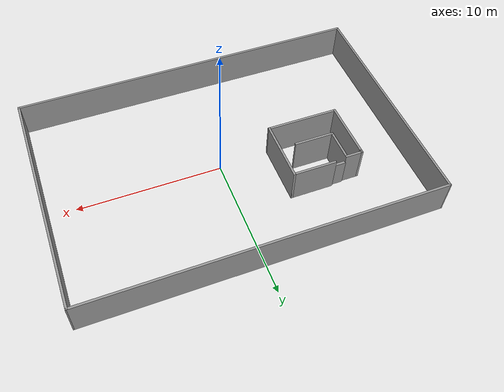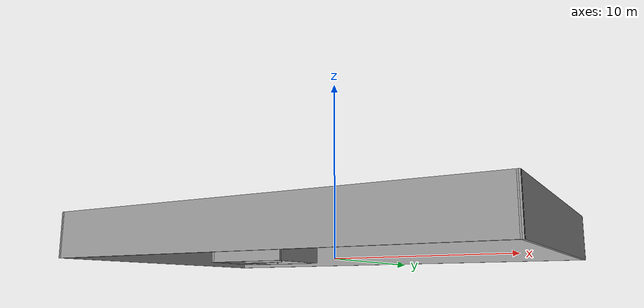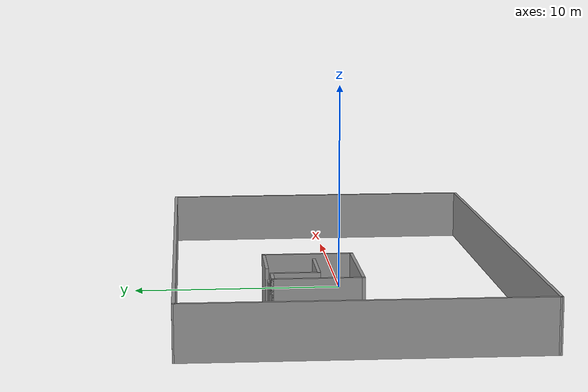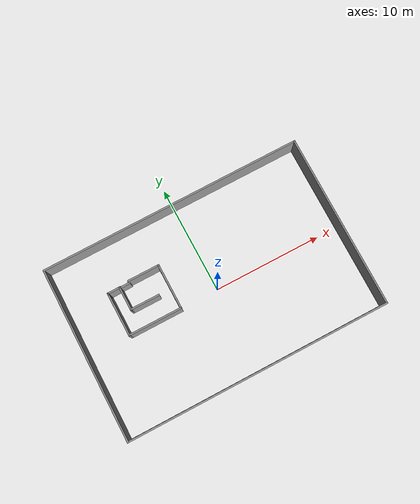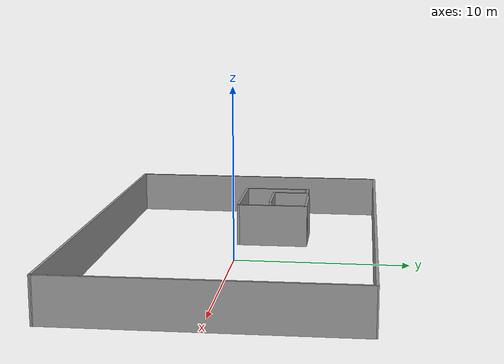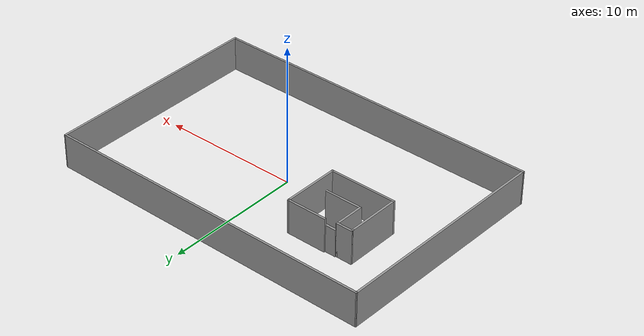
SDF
<?xml version='1.0'?>
<sdf version='1.7'>
  <model name='world1'>
    <pose>-0.307076 0.056557 0 0 -0 0</pose>
    <link name='Door_0'>
      <collision name='Door_0_Collision'>
        <geometry>
          <box>
            <size>0.9 0.17 2</size>
          </box>
        </geometry>
        <pose>0 0 1 0 -0 0</pose>
      </collision>
      <visual name='Door_0_Visual'>
        <pose>0 0 1 0 -0 0</pose>
        <geometry>
          <box>
            <size>0.9 0.17 2</size>
          </box>
        </geometry>
        <material>
          <script>
            <uri>file://media/materials/scripts/gazebo.material</uri>
            <name>Gazebo/Grey</name>
          </script>
        </material>
      </visual>
      <pose>-6.49109 3.74781 0 0 -0 0</pose>
    </link>
    <link name='Wall_0'>
      <collision name='Wall_0_Collision'>
        <geometry>
          <box>
            <size>16.1041 0.15 2.5</size>
          </box>
        </geometry>
        <pose>0 0 1.25 0 -0 0</pose>
      </collision>
      <visual name='Wall_0_Visual'>
        <pose>0 0 1.25 0 -0 0</pose>
        <geometry>
          <box>
            <size>16.1041 0.15 2.5</size>
          </box>
        </geometry>
        <material>
          <script>
            <uri>file://media/materials/scripts/gazebo.material</uri>
            <name>Gazebo/Grey</name>
          </script>
          <ambient>1 1 1 1</ambient>
        </material>
        <meta>
          <layer>0</layer>
        </meta>
      </visual>
      <pose>-12.0801 -0 0 0 -0 1.55894</pose>
    </link>
    <link name='Wall_1'>
      <collision name='Wall_1_Collision'>
        <geometry>
          <box>
            <size>24.25 0.15 2.5</size>
          </box>
        </geometry>
        <pose>0 0 1.25 0 -0 0</pose>
      </collision>
      <visual name='Wall_1_Visual'>
        <pose>0 0 1.25 0 -0 0</pose>
        <geometry>
          <box>
            <size>24.25 0.15 2.5</size>
          </box>
        </geometry>
        <material>
          <script>
            <uri>file://media/materials/scripts/gazebo.material</uri>
            <name>Gazebo/Grey</name>
          </script>
          <ambient>1 1 1 1</ambient>
        </material>
        <meta>
          <layer>0</layer>
        </meta>
      </visual>
      <pose>0.064453 7.97648 0 0 -0 0</pose>
    </link>
    <link name='Wall_10'>
      <collision name='Wall_10_Collision'>
        <geometry>
          <box>
            <size>0.15 0.15 2.5</size>
          </box>
        </geometry>
        <pose>0 0 1.25 0 -0 0</pose>
      </collision>
      <visual name='Wall_10_Visual'>
        <pose>0 0 1.25 0 -0 0</pose>
        <geometry>
          <box>
            <size>0.15 0.15 2.5</size>
          </box>
        </geometry>
        <material>
          <script>
            <uri>file://media/materials/scripts/gazebo.material</uri>
            <name>Gazebo/Grey</name>
          </script>
          <ambient>1 1 1 1</ambient>
        </material>
        <meta>
          <layer>0</layer>
        </meta>
      </visual>
      <pose>-8.0929 3.60159 0 0 -0 0</pose>
    </link>
    <link name='Wall_11'>
      <collision name='Wall_11_Collision'>
        <geometry>
          <box>
            <size>0.15 0.15 2.5</size>
          </box>
        </geometry>
        <pose>0 0 1.25 0 -0 0</pose>
      </collision>
      <visual name='Wall_11_Visual'>
        <pose>0 0 1.25 0 -0 0</pose>
        <geometry>
          <box>
            <size>0.15 0.15 2.5</size>
          </box>
        </geometry>
        <material>
          <script>
            <uri>file://media/materials/scripts/gazebo.material</uri>
            <name>Gazebo/Grey</name>
          </script>
          <ambient>1 1 1 1</ambient>
        </material>
        <meta>
          <layer>0</layer>
        </meta>
      </visual>
      <pose>-8.0929 3.60159 0 0 -0 0</pose>
    </link>
    <link name='Wall_12'>
      <collision name='Wall_12_Collision'>
        <geometry>
          <box>
            <size>0.25 0.15 2.5</size>
          </box>
        </geometry>
        <pose>0 0 1.25 0 -0 0</pose>
      </collision>
      <visual name='Wall_12_Visual'>
        <pose>0 0 1.25 0 -0 0</pose>
        <geometry>
          <box>
            <size>0.25 0.15 2.5</size>
          </box>
        </geometry>
        <material>
          <script>
            <uri>file://media/materials/scripts/gazebo.material</uri>
            <name>Gazebo/Grey</name>
          </script>
          <ambient>1 1 1 1</ambient>
        </material>
        <meta>
          <layer>0</layer>
        </meta>
      </visual>
      <pose>-8.0929 3.65159 0 0 -0 1.5708</pose>
    </link>
    <link name='Wall_13'>
      <collision name='Wall_13_Collision'>
        <geometry>
          <box>
            <size>1.25 0.15 2.5</size>
          </box>
        </geometry>
        <pose>0 0 1.25 0 -0 0</pose>
      </collision>
      <visual name='Wall_13_Visual'>
        <pose>0 0 1.25 0 -0 0</pose>
        <geometry>
          <box>
            <size>1.25 0.15 2.5</size>
          </box>
        </geometry>
        <material>
          <script>
            <uri>file://media/materials/scripts/gazebo.material</uri>
            <name>Gazebo/Grey</name>
          </script>
          <ambient>1 1 1 1</ambient>
        </material>
        <meta>
          <layer>0</layer>
        </meta>
      </visual>
      <pose>-7.5429 3.70159 0 0 -0 0</pose>
    </link>
    <link name='Wall_14'>
      <collision name='Wall_14_Collision'>
        <geometry>
          <box>
            <size>2.25 0.15 2.5</size>
          </box>
        </geometry>
        <pose>0 0 1.25 0 -0 0</pose>
      </collision>
      <visual name='Wall_14_Visual'>
        <pose>0 0 1.25 0 -0 0</pose>
        <geometry>
          <box>
            <size>2.25 0.15 2.5</size>
          </box>
        </geometry>
        <material>
          <script>
            <uri>file://media/materials/scripts/gazebo.material</uri>
            <name>Gazebo/Grey</name>
          </script>
          <ambient>1 1 1 1</ambient>
        </material>
        <meta>
          <layer>0</layer>
        </meta>
      </visual>
      <pose>-6.9929 2.65159 0 0 -0 -1.5708</pose>
    </link>
    <link name='Wall_15'>
      <collision name='Wall_15_Collision'>
        <geometry>
          <box>
            <size>2.75 0.15 2.5</size>
          </box>
        </geometry>
        <pose>0 0 1.25 0 -0 0</pose>
      </collision>
      <visual name='Wall_15_Visual'>
        <pose>0 0 1.25 0 -0 0</pose>
        <geometry>
          <box>
            <size>2.75 0.15 2.5</size>
          </box>
        </geometry>
        <material>
          <script>
            <uri>file://media/materials/scripts/gazebo.material</uri>
            <name>Gazebo/Grey</name>
          </script>
          <ambient>1 1 1 1</ambient>
        </material>
        <meta>
          <layer>0</layer>
        </meta>
      </visual>
      <pose>-5.6929 1.60159 0 0 -0 0</pose>
    </link>
    <link name='Wall_2'>
      <collision name='Wall_2_Collision'>
        <geometry>
          <box>
            <size>16.1031 0.15 2.5</size>
          </box>
        </geometry>
        <pose>0 0 1.25 0 -0 0</pose>
      </collision>
      <visual name='Wall_2_Visual'>
        <pose>0 0 1.25 0 -0 0</pose>
        <geometry>
          <box>
            <size>16.1031 0.15 2.5</size>
          </box>
        </geometry>
        <material>
          <script>
            <uri>file://media/materials/scripts/gazebo.material</uri>
            <name>Gazebo/Grey</name>
          </script>
          <ambient>1 1 1 1</ambient>
        </material>
        <meta>
          <layer>0</layer>
        </meta>
      </visual>
      <pose>12.1449 -0 0 0 -0 -1.56698</pose>
    </link>
    <link name='Wall_3'>
      <collision name='Wall_3_Collision'>
        <geometry>
          <box>
            <size>24.5 0.15 2.5</size>
          </box>
        </geometry>
        <pose>0 0 1.25 0 -0 0</pose>
      </collision>
      <visual name='Wall_3_Visual'>
        <pose>0 0 1.25 0 -0 0</pose>
        <geometry>
          <box>
            <size>24.5 0.15 2.5</size>
          </box>
        </geometry>
        <material>
          <script>
            <uri>file://media/materials/scripts/gazebo.material</uri>
            <name>Gazebo/Grey</name>
          </script>
          <ambient>1 1 1 1</ambient>
        </material>
        <meta>
          <layer>0</layer>
        </meta>
      </visual>
      <pose>0.0003 -7.97648 0 0 -0 3.14159</pose>
    </link>
    <link name='Wall_5'>
      <collision name='Wall_5_Collision'>
        <geometry>
          <box>
            <size>3 0.15 2.5</size>
          </box>
        </geometry>
        <pose>0 0 1.25 0 -0 0</pose>
      </collision>
      <visual name='Wall_5_Visual'>
        <pose>0 0 1.25 0 -0 0</pose>
        <geometry>
          <box>
            <size>3 0.15 2.5</size>
          </box>
        </geometry>
        <material>
          <script>
            <uri>file://media/materials/scripts/gazebo.material</uri>
            <name>Gazebo/Grey</name>
          </script>
          <ambient>1 1 1 1</ambient>
        </material>
        <meta>
          <layer>0</layer>
        </meta>
      </visual>
      <pose>-4.6679 3.85159 0 0 -0 0</pose>
    </link>
    <link name='Wall_6'>
      <collision name='Wall_6_Collision'>
        <geometry>
          <box>
            <size>4.25 0.15 2.5</size>
          </box>
        </geometry>
        <pose>0 0 1.25 0 -0 0</pose>
      </collision>
      <visual name='Wall_6_Visual'>
        <pose>0 0 1.25 0 -0 0</pose>
        <geometry>
          <box>
            <size>4.25 0.15 2.5</size>
          </box>
        </geometry>
        <material>
          <script>
            <uri>file://media/materials/scripts/gazebo.material</uri>
            <name>Gazebo/Grey</name>
          </script>
          <ambient>1 1 1 1</ambient>
        </material>
        <meta>
          <layer>0</layer>
        </meta>
      </visual>
      <pose>-3.2429 1.80159 0 0 -0 -1.5708</pose>
    </link>
    <link name='Wall_7'>
      <collision name='Wall_7_Collision'>
        <geometry>
          <box>
            <size>5 0.15 2.5</size>
          </box>
        </geometry>
        <pose>0 0 1.25 0 -0 0</pose>
      </collision>
      <visual name='Wall_7_Visual'>
        <pose>0 0 1.25 0 -0 0</pose>
        <geometry>
          <box>
            <size>5 0.15 2.5</size>
          </box>
        </geometry>
        <material>
          <script>
            <uri>file://media/materials/scripts/gazebo.material</uri>
            <name>Gazebo/Grey</name>
          </script>
          <ambient>1 1 1 1</ambient>
        </material>
        <meta>
          <layer>0</layer>
        </meta>
      </visual>
      <pose>-5.6679 -0.24841 0 0 -0 3.14159</pose>
    </link>
    <link name='Wall_8'>
      <collision name='Wall_8_Collision'>
        <geometry>
          <box>
            <size>4 0.15 2.5</size>
          </box>
        </geometry>
        <pose>0 0 1.25 0 -0 0</pose>
      </collision>
      <visual name='Wall_8_Visual'>
        <pose>0 0 1.25 0 -0 0</pose>
        <geometry>
          <box>
            <size>4 0.15 2.5</size>
          </box>
        </geometry>
        <material>
          <script>
            <uri>file://media/materials/scripts/gazebo.material</uri>
            <name>Gazebo/Grey</name>
          </script>
          <ambient>1 1 1 1</ambient>
        </material>
        <meta>
          <layer>0</layer>
        </meta>
      </visual>
      <pose>-8.0929 1.67659 0 0 -0 1.5708</pose>
    </link>
    <link name='Wall_9'>
      <collision name='Wall_9_Collision'>
        <geometry>
          <box>
            <size>0.15 0.15 2.5</size>
          </box>
        </geometry>
        <pose>0 0 1.25 0 -0 0</pose>
      </collision>
      <visual name='Wall_9_Visual'>
        <pose>0 0 1.25 0 -0 0</pose>
        <geometry>
          <box>
            <size>0.15 0.15 2.5</size>
          </box>
        </geometry>
        <material>
          <script>
            <uri>file://media/materials/scripts/gazebo.material</uri>
            <name>Gazebo/Grey</name>
          </script>
          <ambient>1 1 1 1</ambient>
        </material>
        <meta>
          <layer>0</layer>
        </meta>
      </visual>
      <pose>-8.0929 3.60159 0 0 -0 0</pose>
    </link>
    <static>1</static>
  </model>
</sdf>
